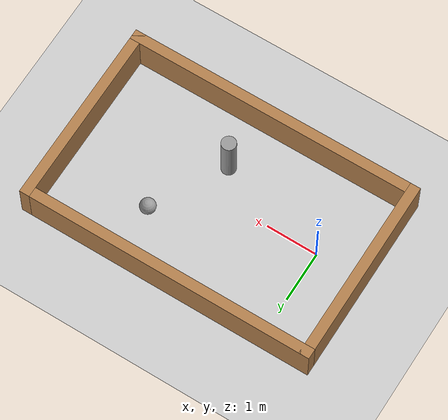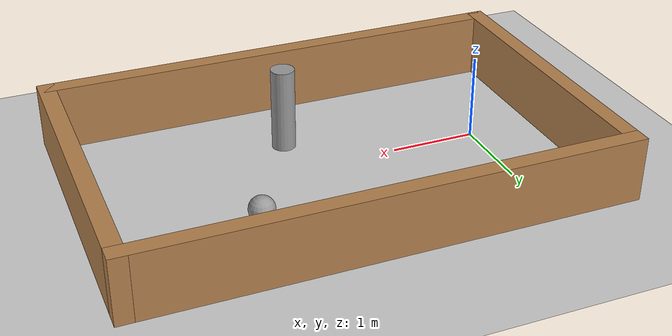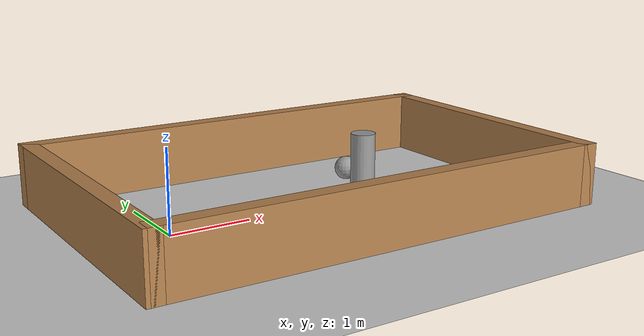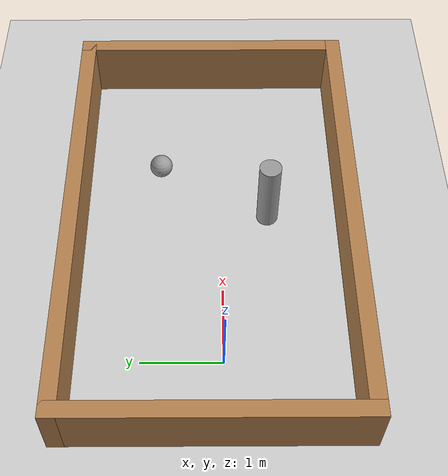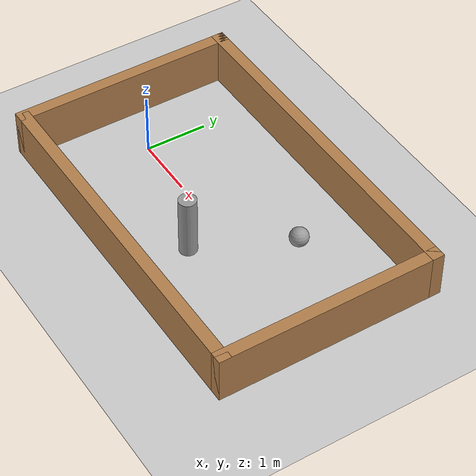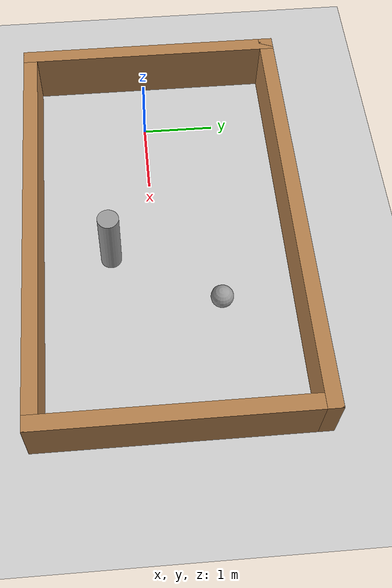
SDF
<sdf version="1.6">
 <world name="default">
  <light name="sun" type="directional">
   <pose>0 0 10 0 -0 0</pose>
   <diffuse>0.8 0.8 0.8 1</diffuse>
   <specular>0.2 0.2 0.2 1</specular>
   <attenuation>
    <range>1000</range>
    <constant>0.9</constant>
    <linear>0.01</linear>
    <quadratic>0.001</quadratic>
   </attenuation>
   <direction>-0.5 0.1 -0.9</direction>
  </light>
  <model name="ground_plane">
   <static>1</static>
   <link name="link">
    <collision name="collision">
     <geometry><plane><normal>0 0 1</normal><size>100 100</size></plane></geometry>
     <surface>
      <contact><collide_bitmask>65535</collide_bitmask></contact>
      <friction><ode><mu>100</mu><mu2>50</mu2></ode></friction>
     </surface>
    </collision>
    <visual name="visual">
     <cast_shadows>0</cast_shadows>
     <geometry><plane><normal>0 0 1</normal><size>100 100</size></plane></geometry>
     <material>
      <script><uri>file://media/materials/scripts/gazebo.material</uri><name>Gazebo/Grey</name></script>
     </material>
    </visual>
   </link>
  </model>
  <gravity>0 0 -9.8</gravity>
  <magnetic_field>6e-06 2.3e-05 -4.2e-05</magnetic_field>
  <atmosphere type="adiabatic"/>
  <physics name="default_physics" default="0" type="ode">
   <max_step_size>0.001</max_step_size>
   <real_time_factor>1</real_time_factor>
   <real_time_update_rate>1000</real_time_update_rate>
  </physics>
  <scene><ambient>0.4 0.4 0.4 1</ambient><background>0.7 0.7 0.7 1</background><shadows>1</shadows></scene>
  <audio><device>default</device></audio>
  <spherical_coordinates>
   <surface_model>EARTH_WGS84</surface_model>
   <latitude_deg>0</latitude_deg>
   <longitude_deg>0</longitude_deg>
   <elevation>0</elevation>
   <heading_deg>0</heading_deg>
  </spherical_coordinates>
  <model name="Arena_box">
   <pose>1.87992 0.135982 0 0 -0 0</pose>
   <link name="Wall_11">
    <collision name="Wall_11_Collision">
     <geometry><box><size>5.806 0.2 0.764</size></box></geometry>
     <pose>0 0 0.382 0 -0 0</pose>
    </collision>
    <visual name="Wall_11_Visual">
     <pose>0 0 0.382 0 -0 0</pose>
     <geometry><box><size>5.806 0.2 0.764</size></box></geometry>
     <material>
      <script><uri>file://media/materials/scripts/gazebo.material</uri><name>Gazebo/Wood</name></script>
      <ambient>1 1 1 1</ambient>
     </material>
     <meta><layer>0</layer></meta>
    </visual>
    <pose>-0 1.7455 0 0 -0 3.14159</pose>
   </link>
   <link name="Wall_13">
    <collision name="Wall_13_Collision">
     <geometry><box><size>3.691 0.2 0.764</size></box></geometry>
     <pose>0 0 0.382 0 -0 0</pose>
    </collision>
    <visual name="Wall_13_Visual">
     <pose>0 0 0.382 0 -0 0</pose>
     <geometry><box><size>3.691 0.2 0.764</size></box></geometry>
     <material>
      <script><uri>file://media/materials/scripts/gazebo.material</uri><name>Gazebo/Wood</name></script>
      <ambient>1 1 1 1</ambient>
     </material>
     <meta><layer>0</layer></meta>
    </visual>
    <pose>-2.803 0 0 0 -0 -1.5708</pose>
   </link>
   <link name="Wall_5">
    <collision name="Wall_5_Collision">
     <geometry><box><size>5.756 0.2 0.764</size></box></geometry>
     <pose>0 0 0.382 0 -0 0</pose>
    </collision>
    <visual name="Wall_5_Visual">
     <pose>0 0 0.382 0 -0 0</pose>
     <geometry><box><size>5.756 0.2 0.764</size></box></geometry>
     <material>
      <script><uri>file://media/materials/scripts/gazebo.material</uri><name>Gazebo/Wood</name></script>
      <ambient>1 1 1 1</ambient>
     </material>
     <meta><layer>0</layer></meta>
    </visual>
    <pose>0.025 -1.7455 0 0 -0 0</pose>
   </link>
   <link name="Wall_7">
    <collision name="Wall_7_Collision">
     <geometry><box><size>3.691 0.2 0.764</size></box></geometry>
     <pose>0 0 0.382 0 -0 0</pose>
    </collision>
    <visual name="Wall_7_Visual">
     <pose>0 0 0.382 0 -0 0</pose>
     <geometry><box><size>3.691 0.2 0.764</size></box></geometry>
     <material>
      <script><uri>file://media/materials/scripts/gazebo.material</uri><name>Gazebo/Wood</name></script>
      <ambient>1 1 1 1</ambient>
     </material>
     <meta><layer>0</layer></meta>
    </visual>
    <pose>2.803 0 0 0 -0 1.5708</pose>
   </link>
   <static>1</static>
  </model>
  <model name="unit_cylinder_static">
   <link name="link">
    <inertial>
     <mass>1</mass>
     <inertia><ixx>0.145833</ixx><ixy>0</ixy><ixz>0</ixz><iyy>0.145833</iyy><iyz>0</iyz><izz>0.125</izz></inertia>
    </inertial>
    <visual name="visual">
     <geometry><cylinder><radius>0.139983</radius><length>1</length></cylinder></geometry>
     <material>
      <script><name>Gazebo/Grey</name><uri>file://media/materials/scripts/gazebo.material</uri></script>
     </material>
    </visual>
    <collision name="collision">
     <geometry><cylinder><radius>0.139983</radius><length>1</length></cylinder></geometry>
     <surface>
      <friction>
       <ode><mu>1</mu><mu2>1</mu2><fdir1>0 0 0</fdir1><slip1>0</slip1><slip2>0</slip2></ode>
       <torsional>
        <coefficient>1</coefficient>
        <patch_radius>0</patch_radius>
        <surface_radius>0</surface_radius>
        <use_patch_radius>1</use_patch_radius>
        <ode><slip>0</slip></ode>
       </torsional>
      </friction>
      <bounce><restitution_coefficient>0</restitution_coefficient><threshold>1e+06</threshold></bounce>
      <contact>
       <collide_without_contact>0</collide_without_contact>
       <collide_without_contact_bitmask>1</collide_without_contact_bitmask>
       <collide_bitmask>1</collide_bitmask>
       <ode>
        <soft_cfm>0</soft_cfm>
        <soft_erp>0.2</soft_erp>
        <kp>1e+13</kp>
        <kd>1</kd>
        <max_vel>0.01</max_vel>
        <min_depth>0</min_depth>
       </ode>
       <bullet>
        <split_impulse>1</split_impulse>
        <split_impulse_penetration_threshold>-0.01</split_impulse_penetration_threshold>
        <soft_cfm>0</soft_cfm>
        <soft_erp>0.2</soft_erp>
        <kp>1e+13</kp>
        <kd>1</kd>
       </bullet>
      </contact>
     </surface>
    </collision>
   </link>
   <static>1</static>
   <pose>2.1623 -0.596727 0.499991 0 0 -1e-06</pose>
  </model>
  <model name="unit_sphere_static">
   <link name="link">
    <inertial>
     <mass>1</mass>
     <inertia><ixx>0.1</ixx><ixy>0</ixy><ixz>0</ixz><iyy>0.1</iyy><iyz>0</iyz><izz>0.1</izz></inertia>
    </inertial>
    <visual name="visual">
     <geometry><sphere><radius>0.151512</radius></sphere></geometry>
     <material>
      <script><name>Gazebo/Grey</name><uri>file://media/materials/scripts/gazebo.material</uri></script>
     </material>
    </visual>
    <collision name="collision">
     <geometry><sphere><radius>0.151512</radius></sphere></geometry>
     <surface>
      <friction>
       <ode><mu>1</mu><mu2>1</mu2><fdir1>0 0 0</fdir1><slip1>0</slip1><slip2>0</slip2></ode>
       <torsional>
        <coefficient>1</coefficient>
        <patch_radius>0</patch_radius>
        <surface_radius>0</surface_radius>
        <use_patch_radius>1</use_patch_radius>
        <ode><slip>0</slip></ode>
       </torsional>
      </friction>
      <bounce><restitution_coefficient>0</restitution_coefficient><threshold>1e+06</threshold></bounce>
      <contact>
       <collide_without_contact>0</collide_without_contact>
       <collide_without_contact_bitmask>1</collide_without_contact_bitmask>
       <collide_bitmask>1</collide_bitmask>
       <ode>
        <soft_cfm>0</soft_cfm>
        <soft_erp>0.2</soft_erp>
        <kp>1e+13</kp>
        <kd>1</kd>
        <max_vel>0.01</max_vel>
        <min_depth>0</min_depth>
       </ode>
       <bullet>
        <split_impulse>1</split_impulse>
        <split_impulse_penetration_threshold>-0.01</split_impulse_penetration_threshold>
        <soft_cfm>0</soft_cfm>
        <soft_erp>0.2</soft_erp>
        <kp>1e+13</kp>
        <kd>1</kd>
       </bullet>
      </contact>
     </surface>
    </collision>
   </link>
   <static>1</static>
   <pose>2.92774 0.822407 0.151512 0 -0 0</pose>
  </model>
 </world>
</sdf>
